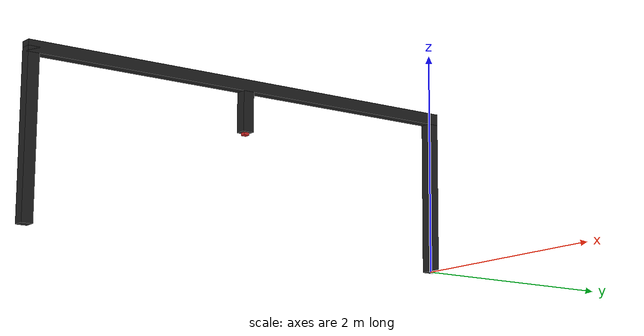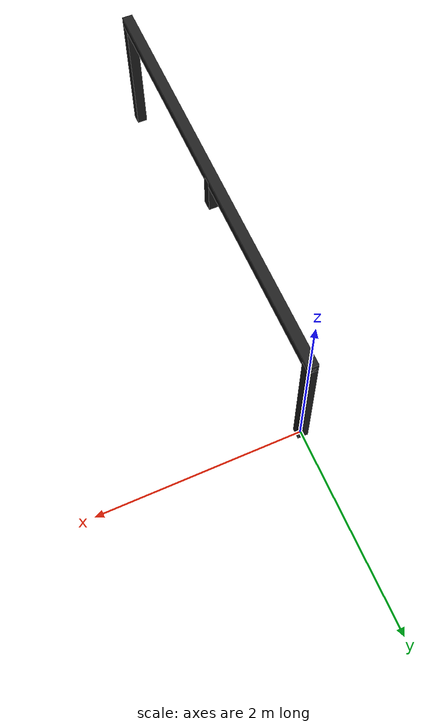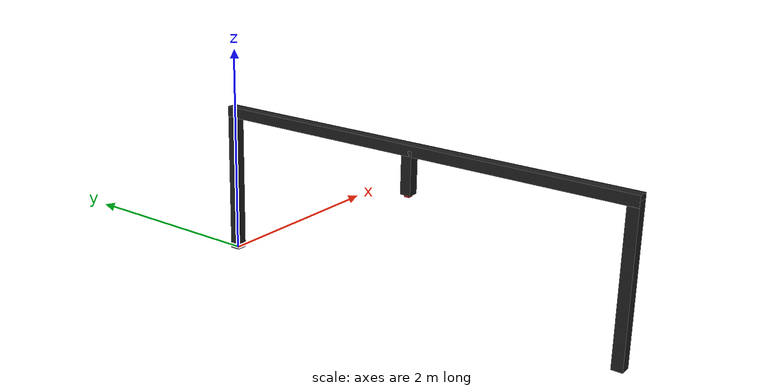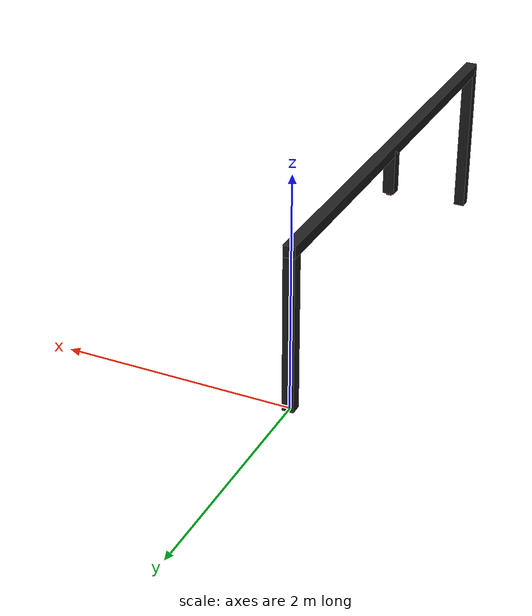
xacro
<?xml version="1.0"?>
<!-- Revolute-Revolute Manipulator -->
<robot name="pole2" xmlns:xacro="http://www.ros.org/wiki/xacro">

  <!-- Constants for robot dimensions -->
  <xacro:property name="PI" value="3.1415926535897931"/>
  <xacro:property name="mass" value="1" /> <!-- arbitrary value for mass -->
  <xacro:property name="width" value="0.1" /> <!-- Square dimensions (widthxwidth) of beams -->
  <xacro:property name="height1" value="2" /> <!-- Link 1 -->
  <xacro:property name="height2" value="1" /> <!-- Link 2 -->
  <xacro:property name="height3" value="1" /> <!-- Link 3 -->
  <xacro:property name="camera_link" value="0.05" /> <!-- Size of square 'camera' box -->
  <xacro:property name="axel_offset" value="0.05" /> <!-- Space btw top of beam and the each joint -->

  <!-- Import all Gazebo-customization elements, including Gazebo colors -->
  <xacro:include filename="$(find two_scara_collaboration)/urdf/set2.gazebo" />

  <!-- world link -->
<link name="world"/>

<!-- base_link and its fixed joint -->
<joint name="joint_fix" type="fixed">
  <parent link="world"/>
  <child link="base_link"/>
</joint>

<link name="base_link">
  <collision>
    <origin xyz="0 0 0.7" rpy="0 0 0"/>
    <geometry>
      <box size="0.1 0.1 1.4"/>
    </geometry>
  </collision>

  <visual>
    <origin xyz="0 0 0.7" rpy="0 0 0"/>
    <geometry>
    <box size="0.1 0.1 1.4"/>
    </geometry>
  </visual>

  <inertial>
    <origin xyz="0 0 0.1" rpy="0 0 0"/>
    <mass value="1"/>
    <inertia
      ixx="1.0" ixy="0.0" ixz="0.0"
      iyy="1.0" iyz="0.0"
      izz="1.0"/>
  </inertial>
</link>

<gazebo reference="base_link">
  <material>Gazebo/Black</material>
</gazebo>

<!-- the first arm of the pole, middle link -->
<joint name="joint_fix1" type="fixed">
  <parent link="base_link"/>
  <child link="arm1"/>
</joint>

<link name="arm1">
  <collision>
    <origin xyz="0 0 1.4" rpy="0 0 0"/>
    <geometry>
      <box size="0.1 4.1 0.1"/>
    </geometry>
  </collision>

  <visual>
    <origin xyz="0 -2 1.4" rpy="0 0 0"/>
    <geometry>
      <box size="0.1 4.1 0.1"/>
    </geometry>
  </visual>

  <inertial>
    <origin xyz="0 -2 1.4" rpy="0 0 0"/>
    <mass value="1"/>
    <inertia
      ixx="0.001" ixy="0.0" ixz="0.0"
      iyy="0.001" iyz="0.0"
      izz="0.001"/>
  </inertial>
</link>

<gazebo reference="arm1">
  <material>Gazebo/Black</material>
</gazebo>

<!-- middle_link, place for camera -->
<joint name="joint_fix3" type="fixed">
  <parent link="arm1"/>
  <child link="middle_link"/>
</joint>

<link name="middle_link">
  <collision>
    <origin xyz="0 -2 1.1" rpy="0 0 0"/>
    <geometry>
      <box size="0.1 0.1 0.6"/>
    </geometry>
  </collision>

  <visual>
    <origin xyz="0 -2 1.2" rpy="0 0 0"/>
    <geometry>
      <box size="0.1 0.1 0.4"/>
    </geometry>
  </visual>

  <inertial>
    <origin xyz="0 -2 0.1" rpy="0 0 0"/>
    <mass value="1"/>
    <inertia
      ixx="1.0" ixy="0.0" ixz="0.0"
      iyy="1.0" iyz="0.0"
      izz="1.0"/>
  </inertial>
</link>

<gazebo reference="middle_link">
  <material>Gazebo/Black</material>
</gazebo>

<!-- the second arm of the pole/link -->
<joint name="joint_fix2" type="fixed">
  <parent link="arm1"/>
  <child link="arm2"/>
</joint>

<link name="arm2">
  <collision>
    <origin xyz="0 -4 0.7" rpy="0 0 0"/>
    <geometry>
      <box size="0.1 0.1 1.4"/>
    </geometry>
  </collision>

  <visual>
    <origin xyz="0 -4 0.7" rpy="0 0 0"/>
    <geometry>
      <box size="0.1 0.1 1.4"/>
    </geometry>
  </visual>

  <inertial>
    <origin xyz="0 0 0.1" rpy="0 0 0"/>
    <mass value="1"/>
    <inertia
      ixx="0.001" ixy="0.0" ixz="0.0"
      iyy="0.001" iyz="0.0"
      izz="0.001"/>
  </inertial>
</link>

<gazebo reference="arm2">
  <material>Gazebo/Black</material>
</gazebo>

<joint name="camera_joint" type="fixed">
    <axis xyz="0 -2 0" />
    <origin xyz="0 -2 1" rpy="0 ${pi/2} 0"/>
    <parent link="middle_link"/>
    <child link="camera_link"/>
  </joint>

  <!-- Camera -->
  <link name="camera_link">
    <collision>
      <origin xyz="0 0 0" rpy="0 0 0"/>
      <geometry>
	<box size="${camera_link} ${camera_link} ${camera_link}"/>
      </geometry>
    </collision>

    <visual>
      <origin xyz="0 0 0" rpy="0 0 0"/>
      <geometry>
	<box size="${camera_link} ${camera_link} ${camera_link}"/>
      </geometry>
      <material name="red"/>
    </visual>

    <inertial>
      <mass value="1e-5" />
      <origin xyz="0 0 0" rpy="0 0 0"/>
      <inertia ixx="1e-6" ixy="0" ixz="0" iyy="1e-6" iyz="0" izz="1e-6" />
    </inertial>
  </link>

  <!-- generate an optical frame http://www.ros.org/reps/rep-0103.html#suffix-frames
      so that ros and opencv can operate on the camera frame correctly -->
  <joint name="camera_optical_joint" type="fixed">
    <!-- these values have to be these values otherwise the gazebo camera image
        won't be aligned properly with the frame it is supposedly originating from -->
    <origin xyz="0 0 0" rpy="${-pi/2} 0 ${-pi/2}"/>
    <parent link="camera_link"/>
    <child link="camera_link_optical"/>
  </joint>

  <link name="camera_link_optical">
  </link>

</robot>
